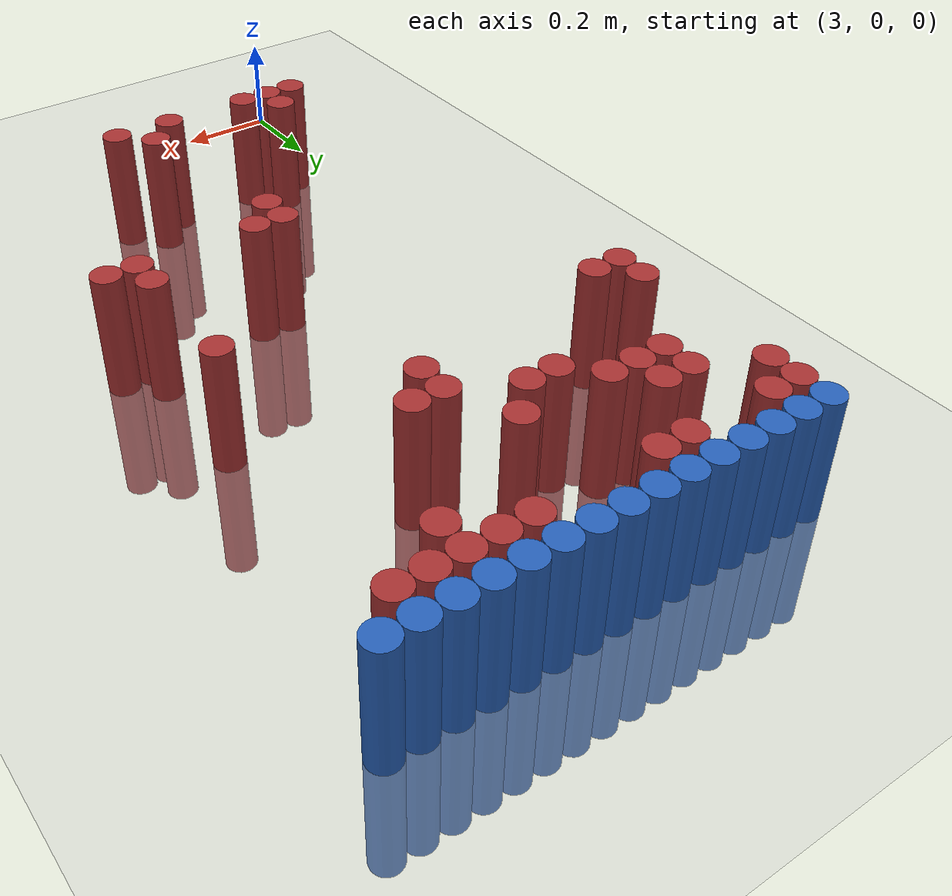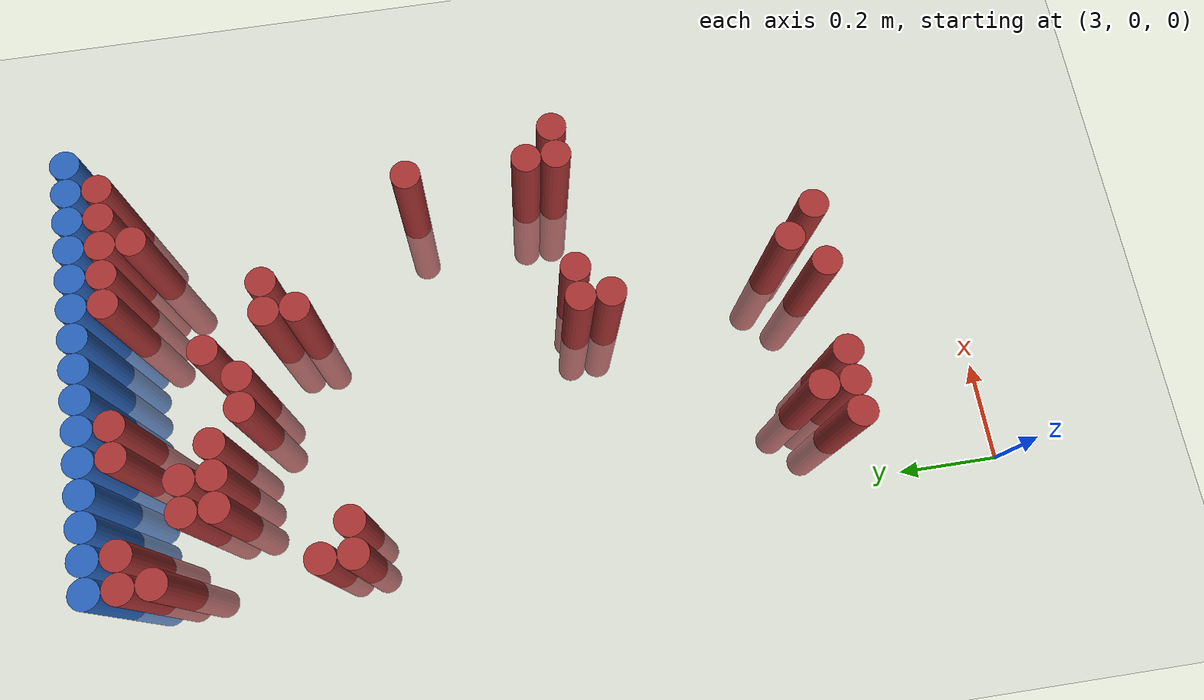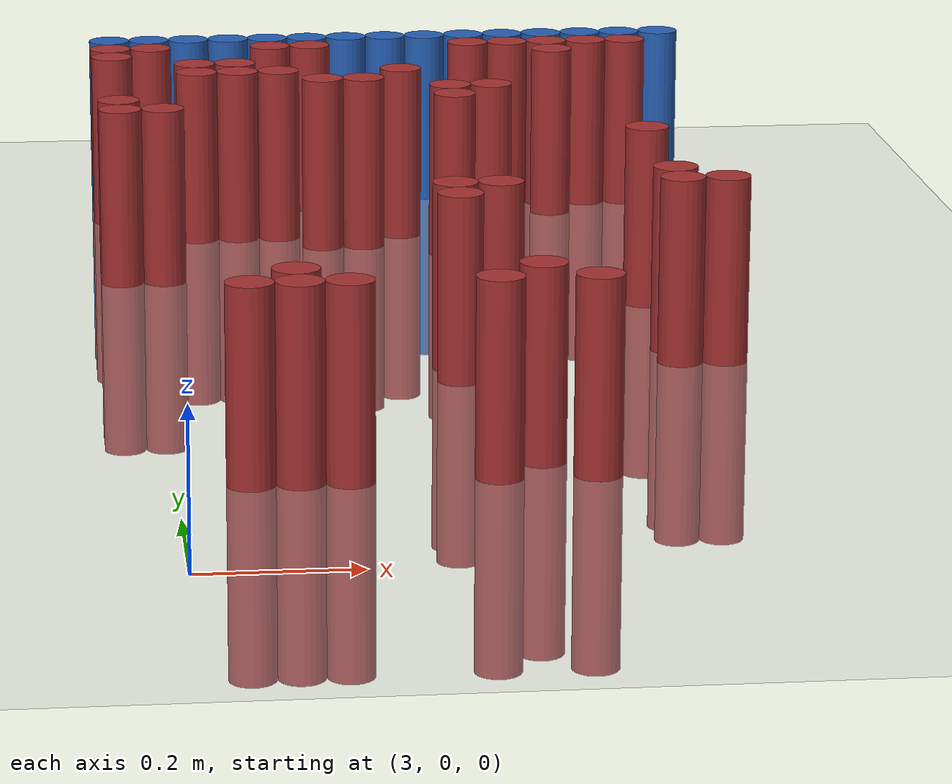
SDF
<sdf version="1.6">
 <world name="default">
  <model name="ground_plane">
   <static>1</static>
   <link name="link">
    <collision name="collision">
     <geometry><plane><normal>0 0 1</normal><size>100 100</size></plane></geometry>
     <surface><friction><ode><mu>100</mu><mu2>50</mu2></ode></friction></surface>
    </collision>
    <visual name="visual">
     <cast_shadows>0</cast_shadows>
     <geometry><plane><normal>0 0 1</normal><size>100 100</size></plane></geometry>
     <material>
      <script><uri>file://media/materials/scripts/gazebo.material</uri><name>Gazebo/Grey</name></script>
     </material>
    </visual>
   </link>
  </model>
  <model name="unit_cylinder_110">
   <static>1</static>
   <pose>2.970000 1.770000 0.000000 0.000000 0.000000 0.000000</pose>
   <link name="link">
    <inertial>
     <mass>1</mass>
     <inertia><ixx>0.145833</ixx><ixy>0</ixy><ixz>0</ixz><iyy>0.145833</iyy><iyz>0</iyz><izz>0.125</izz></inertia>
    </inertial>
    <collision name="collision">
     <geometry><cylinder><radius>0.030000</radius><length>0.5</length></cylinder></geometry>
    </collision>
    <visual name="visual">
     <geometry><cylinder><radius>0.030000</radius><length>0.5</length></cylinder></geometry>
     <material>
      <ambient>0.152000 0.379000 0.720000 1</ambient>
      <diffuse>0.152000 0.379000 0.720000 1</diffuse>
     </material>
     <material>
      <script><name>Gazebo/Grey</name><uri>file://media/materials/scripts/gazebo.material</uri></script>
     </material>
    </visual>
   </link>
  </model>
  <model name="unit_cylinder_111">
   <static>1</static>
   <pose>3.030000 1.770000 0.000000 0.000000 0.000000 0.000000</pose>
   <link name="link">
    <inertial>
     <mass>1</mass>
     <inertia><ixx>0.145833</ixx><ixy>0</ixy><ixz>0</ixz><iyy>0.145833</iyy><iyz>0</iyz><izz>0.125</izz></inertia>
    </inertial>
    <collision name="collision">
     <geometry><cylinder><radius>0.030000</radius><length>0.5</length></cylinder></geometry>
    </collision>
    <visual name="visual">
     <geometry><cylinder><radius>0.030000</radius><length>0.5</length></cylinder></geometry>
     <material>
      <ambient>0.152000 0.379000 0.720000 1</ambient>
      <diffuse>0.152000 0.379000 0.720000 1</diffuse>
     </material>
     <material>
      <script><name>Gazebo/Grey</name><uri>file://media/materials/scripts/gazebo.material</uri></script>
     </material>
    </visual>
   </link>
  </model>
  <model name="unit_cylinder_112">
   <static>1</static>
   <pose>3.090000 1.770000 0.000000 0.000000 0.000000 0.000000</pose>
   <link name="link">
    <inertial>
     <mass>1</mass>
     <inertia><ixx>0.145833</ixx><ixy>0</ixy><ixz>0</ixz><iyy>0.145833</iyy><iyz>0</iyz><izz>0.125</izz></inertia>
    </inertial>
    <collision name="collision">
     <geometry><cylinder><radius>0.030000</radius><length>0.5</length></cylinder></geometry>
    </collision>
    <visual name="visual">
     <geometry><cylinder><radius>0.030000</radius><length>0.5</length></cylinder></geometry>
     <material>
      <ambient>0.152000 0.379000 0.720000 1</ambient>
      <diffuse>0.152000 0.379000 0.720000 1</diffuse>
     </material>
     <material>
      <script><name>Gazebo/Grey</name><uri>file://media/materials/scripts/gazebo.material</uri></script>
     </material>
    </visual>
   </link>
  </model>
  <model name="unit_cylinder_113">
   <static>1</static>
   <pose>3.150000 1.770000 0.000000 0.000000 0.000000 0.000000</pose>
   <link name="link">
    <inertial>
     <mass>1</mass>
     <inertia><ixx>0.145833</ixx><ixy>0</ixy><ixz>0</ixz><iyy>0.145833</iyy><iyz>0</iyz><izz>0.125</izz></inertia>
    </inertial>
    <collision name="collision">
     <geometry><cylinder><radius>0.030000</radius><length>0.5</length></cylinder></geometry>
    </collision>
    <visual name="visual">
     <geometry><cylinder><radius>0.030000</radius><length>0.5</length></cylinder></geometry>
     <material>
      <ambient>0.152000 0.379000 0.720000 1</ambient>
      <diffuse>0.152000 0.379000 0.720000 1</diffuse>
     </material>
     <material>
      <script><name>Gazebo/Grey</name><uri>file://media/materials/scripts/gazebo.material</uri></script>
     </material>
    </visual>
   </link>
  </model>
  <model name="unit_cylinder_114">
   <static>1</static>
   <pose>3.210000 1.770000 0.000000 0.000000 0.000000 0.000000</pose>
   <link name="link">
    <inertial>
     <mass>1</mass>
     <inertia><ixx>0.145833</ixx><ixy>0</ixy><ixz>0</ixz><iyy>0.145833</iyy><iyz>0</iyz><izz>0.125</izz></inertia>
    </inertial>
    <collision name="collision">
     <geometry><cylinder><radius>0.030000</radius><length>0.5</length></cylinder></geometry>
    </collision>
    <visual name="visual">
     <geometry><cylinder><radius>0.030000</radius><length>0.5</length></cylinder></geometry>
     <material>
      <ambient>0.152000 0.379000 0.720000 1</ambient>
      <diffuse>0.152000 0.379000 0.720000 1</diffuse>
     </material>
     <material>
      <script><name>Gazebo/Grey</name><uri>file://media/materials/scripts/gazebo.material</uri></script>
     </material>
    </visual>
   </link>
  </model>
  <model name="unit_cylinder_115">
   <static>1</static>
   <pose>3.270000 1.770000 0.000000 0.000000 0.000000 0.000000</pose>
   <link name="link">
    <inertial>
     <mass>1</mass>
     <inertia><ixx>0.145833</ixx><ixy>0</ixy><ixz>0</ixz><iyy>0.145833</iyy><iyz>0</iyz><izz>0.125</izz></inertia>
    </inertial>
    <collision name="collision">
     <geometry><cylinder><radius>0.030000</radius><length>0.5</length></cylinder></geometry>
    </collision>
    <visual name="visual">
     <geometry><cylinder><radius>0.030000</radius><length>0.5</length></cylinder></geometry>
     <material>
      <ambient>0.152000 0.379000 0.720000 1</ambient>
      <diffuse>0.152000 0.379000 0.720000 1</diffuse>
     </material>
     <material>
      <script><name>Gazebo/Grey</name><uri>file://media/materials/scripts/gazebo.material</uri></script>
     </material>
    </visual>
   </link>
  </model>
  <model name="unit_cylinder_116">
   <static>1</static>
   <pose>3.330000 1.770000 0.000000 0.000000 0.000000 0.000000</pose>
   <link name="link">
    <inertial>
     <mass>1</mass>
     <inertia><ixx>0.145833</ixx><ixy>0</ixy><ixz>0</ixz><iyy>0.145833</iyy><iyz>0</iyz><izz>0.125</izz></inertia>
    </inertial>
    <collision name="collision">
     <geometry><cylinder><radius>0.030000</radius><length>0.5</length></cylinder></geometry>
    </collision>
    <visual name="visual">
     <geometry><cylinder><radius>0.030000</radius><length>0.5</length></cylinder></geometry>
     <material>
      <ambient>0.152000 0.379000 0.720000 1</ambient>
      <diffuse>0.152000 0.379000 0.720000 1</diffuse>
     </material>
     <material>
      <script><name>Gazebo/Grey</name><uri>file://media/materials/scripts/gazebo.material</uri></script>
     </material>
    </visual>
   </link>
  </model>
  <model name="unit_cylinder_117">
   <static>1</static>
   <pose>3.390000 1.770000 0.000000 0.000000 0.000000 0.000000</pose>
   <link name="link">
    <inertial>
     <mass>1</mass>
     <inertia><ixx>0.145833</ixx><ixy>0</ixy><ixz>0</ixz><iyy>0.145833</iyy><iyz>0</iyz><izz>0.125</izz></inertia>
    </inertial>
    <collision name="collision">
     <geometry><cylinder><radius>0.030000</radius><length>0.5</length></cylinder></geometry>
    </collision>
    <visual name="visual">
     <geometry><cylinder><radius>0.030000</radius><length>0.5</length></cylinder></geometry>
     <material>
      <ambient>0.152000 0.379000 0.720000 1</ambient>
      <diffuse>0.152000 0.379000 0.720000 1</diffuse>
     </material>
     <material>
      <script><name>Gazebo/Grey</name><uri>file://media/materials/scripts/gazebo.material</uri></script>
     </material>
    </visual>
   </link>
  </model>
  <model name="unit_cylinder_118">
   <static>1</static>
   <pose>3.450000 1.770000 0.000000 0.000000 0.000000 0.000000</pose>
   <link name="link">
    <inertial>
     <mass>1</mass>
     <inertia><ixx>0.145833</ixx><ixy>0</ixy><ixz>0</ixz><iyy>0.145833</iyy><iyz>0</iyz><izz>0.125</izz></inertia>
    </inertial>
    <collision name="collision">
     <geometry><cylinder><radius>0.030000</radius><length>0.5</length></cylinder></geometry>
    </collision>
    <visual name="visual">
     <geometry><cylinder><radius>0.030000</radius><length>0.5</length></cylinder></geometry>
     <material>
      <ambient>0.152000 0.379000 0.720000 1</ambient>
      <diffuse>0.152000 0.379000 0.720000 1</diffuse>
     </material>
     <material>
      <script><name>Gazebo/Grey</name><uri>file://media/materials/scripts/gazebo.material</uri></script>
     </material>
    </visual>
   </link>
  </model>
  <model name="unit_cylinder_119">
   <static>1</static>
   <pose>3.510000 1.770000 0.000000 0.000000 0.000000 0.000000</pose>
   <link name="link">
    <inertial>
     <mass>1</mass>
     <inertia><ixx>0.145833</ixx><ixy>0</ixy><ixz>0</ixz><iyy>0.145833</iyy><iyz>0</iyz><izz>0.125</izz></inertia>
    </inertial>
    <collision name="collision">
     <geometry><cylinder><radius>0.030000</radius><length>0.5</length></cylinder></geometry>
    </collision>
    <visual name="visual">
     <geometry><cylinder><radius>0.030000</radius><length>0.5</length></cylinder></geometry>
     <material>
      <ambient>0.152000 0.379000 0.720000 1</ambient>
      <diffuse>0.152000 0.379000 0.720000 1</diffuse>
     </material>
     <material>
      <script><name>Gazebo/Grey</name><uri>file://media/materials/scripts/gazebo.material</uri></script>
     </material>
    </visual>
   </link>
  </model>
  <model name="unit_cylinder_120">
   <static>1</static>
   <pose>3.570000 1.770000 0.000000 0.000000 0.000000 0.000000</pose>
   <link name="link">
    <inertial>
     <mass>1</mass>
     <inertia><ixx>0.145833</ixx><ixy>0</ixy><ixz>0</ixz><iyy>0.145833</iyy><iyz>0</iyz><izz>0.125</izz></inertia>
    </inertial>
    <collision name="collision">
     <geometry><cylinder><radius>0.030000</radius><length>0.5</length></cylinder></geometry>
    </collision>
    <visual name="visual">
     <geometry><cylinder><radius>0.030000</radius><length>0.5</length></cylinder></geometry>
     <material>
      <ambient>0.152000 0.379000 0.720000 1</ambient>
      <diffuse>0.152000 0.379000 0.720000 1</diffuse>
     </material>
     <material>
      <script><name>Gazebo/Grey</name><uri>file://media/materials/scripts/gazebo.material</uri></script>
     </material>
    </visual>
   </link>
  </model>
  <model name="unit_cylinder_121">
   <static>1</static>
   <pose>3.630000 1.770000 0.000000 0.000000 0.000000 0.000000</pose>
   <link name="link">
    <inertial>
     <mass>1</mass>
     <inertia><ixx>0.145833</ixx><ixy>0</ixy><ixz>0</ixz><iyy>0.145833</iyy><iyz>0</iyz><izz>0.125</izz></inertia>
    </inertial>
    <collision name="collision">
     <geometry><cylinder><radius>0.030000</radius><length>0.5</length></cylinder></geometry>
    </collision>
    <visual name="visual">
     <geometry><cylinder><radius>0.030000</radius><length>0.5</length></cylinder></geometry>
     <material>
      <ambient>0.152000 0.379000 0.720000 1</ambient>
      <diffuse>0.152000 0.379000 0.720000 1</diffuse>
     </material>
     <material>
      <script><name>Gazebo/Grey</name><uri>file://media/materials/scripts/gazebo.material</uri></script>
     </material>
    </visual>
   </link>
  </model>
  <model name="unit_cylinder_122">
   <static>1</static>
   <pose>3.690000 1.770000 0.000000 0.000000 0.000000 0.000000</pose>
   <link name="link">
    <inertial>
     <mass>1</mass>
     <inertia><ixx>0.145833</ixx><ixy>0</ixy><ixz>0</ixz><iyy>0.145833</iyy><iyz>0</iyz><izz>0.125</izz></inertia>
    </inertial>
    <collision name="collision">
     <geometry><cylinder><radius>0.030000</radius><length>0.5</length></cylinder></geometry>
    </collision>
    <visual name="visual">
     <geometry><cylinder><radius>0.030000</radius><length>0.5</length></cylinder></geometry>
     <material>
      <ambient>0.152000 0.379000 0.720000 1</ambient>
      <diffuse>0.152000 0.379000 0.720000 1</diffuse>
     </material>
     <material>
      <script><name>Gazebo/Grey</name><uri>file://media/materials/scripts/gazebo.material</uri></script>
     </material>
    </visual>
   </link>
  </model>
  <model name="unit_cylinder_123">
   <static>1</static>
   <pose>3.750000 1.770000 0.000000 0.000000 0.000000 0.000000</pose>
   <link name="link">
    <inertial>
     <mass>1</mass>
     <inertia><ixx>0.145833</ixx><ixy>0</ixy><ixz>0</ixz><iyy>0.145833</iyy><iyz>0</iyz><izz>0.125</izz></inertia>
    </inertial>
    <collision name="collision">
     <geometry><cylinder><radius>0.030000</radius><length>0.5</length></cylinder></geometry>
    </collision>
    <visual name="visual">
     <geometry><cylinder><radius>0.030000</radius><length>0.5</length></cylinder></geometry>
     <material>
      <ambient>0.152000 0.379000 0.720000 1</ambient>
      <diffuse>0.152000 0.379000 0.720000 1</diffuse>
     </material>
     <material>
      <script><name>Gazebo/Grey</name><uri>file://media/materials/scripts/gazebo.material</uri></script>
     </material>
    </visual>
   </link>
  </model>
  <model name="unit_cylinder_124">
   <static>1</static>
   <pose>3.810000 1.770000 0.000000 0.000000 0.000000 0.000000</pose>
   <link name="link">
    <inertial>
     <mass>1</mass>
     <inertia><ixx>0.145833</ixx><ixy>0</ixy><ixz>0</ixz><iyy>0.145833</iyy><iyz>0</iyz><izz>0.125</izz></inertia>
    </inertial>
    <collision name="collision">
     <geometry><cylinder><radius>0.030000</radius><length>0.5</length></cylinder></geometry>
    </collision>
    <visual name="visual">
     <geometry><cylinder><radius>0.030000</radius><length>0.5</length></cylinder></geometry>
     <material>
      <ambient>0.152000 0.379000 0.720000 1</ambient>
      <diffuse>0.152000 0.379000 0.720000 1</diffuse>
     </material>
     <material>
      <script><name>Gazebo/Grey</name><uri>file://media/materials/scripts/gazebo.material</uri></script>
     </material>
    </visual>
   </link>
  </model>
  <model name="unit_cylinder_134">
   <static>1</static>
   <pose>2.970000 1.710000 0.000000 0.000000 0.000000 0.000000</pose>
   <link name="link">
    <inertial>
     <mass>1</mass>
     <inertia><ixx>0.145833</ixx><ixy>0</ixy><ixz>0</ixz><iyy>0.145833</iyy><iyz>0</iyz><izz>0.125</izz></inertia>
    </inertial>
    <collision name="collision">
     <geometry><cylinder><radius>0.030000</radius><length>0.5</length></cylinder></geometry>
    </collision>
    <visual name="visual">
     <geometry><cylinder><radius>0.030000</radius><length>0.5</length></cylinder></geometry>
     <material>
      <ambient>0.648000 0.192000 0.192000 1</ambient>
      <diffuse>0.648000 0.192000 0.192000 1</diffuse>
     </material>
     <material>
      <script><name>Gazebo/Grey</name><uri>file://media/materials/scripts/gazebo.material</uri></script>
     </material>
    </visual>
   </link>
  </model>
  <model name="unit_cylinder_135">
   <static>1</static>
   <pose>3.030000 1.710000 0.000000 0.000000 0.000000 0.000000</pose>
   <link name="link">
    <inertial>
     <mass>1</mass>
     <inertia><ixx>0.145833</ixx><ixy>0</ixy><ixz>0</ixz><iyy>0.145833</iyy><iyz>0</iyz><izz>0.125</izz></inertia>
    </inertial>
    <collision name="collision">
     <geometry><cylinder><radius>0.030000</radius><length>0.5</length></cylinder></geometry>
    </collision>
    <visual name="visual">
     <geometry><cylinder><radius>0.030000</radius><length>0.5</length></cylinder></geometry>
     <material>
      <ambient>0.648000 0.192000 0.192000 1</ambient>
      <diffuse>0.648000 0.192000 0.192000 1</diffuse>
     </material>
     <material>
      <script><name>Gazebo/Grey</name><uri>file://media/materials/scripts/gazebo.material</uri></script>
     </material>
    </visual>
   </link>
  </model>
  <model name="unit_cylinder_136">
   <static>1</static>
   <pose>3.210000 1.710000 0.000000 0.000000 0.000000 0.000000</pose>
   <link name="link">
    <inertial>
     <mass>1</mass>
     <inertia><ixx>0.145833</ixx><ixy>0</ixy><ixz>0</ixz><iyy>0.145833</iyy><iyz>0</iyz><izz>0.125</izz></inertia>
    </inertial>
    <collision name="collision">
     <geometry><cylinder><radius>0.030000</radius><length>0.5</length></cylinder></geometry>
    </collision>
    <visual name="visual">
     <geometry><cylinder><radius>0.030000</radius><length>0.5</length></cylinder></geometry>
     <material>
      <ambient>0.648000 0.192000 0.192000 1</ambient>
      <diffuse>0.648000 0.192000 0.192000 1</diffuse>
     </material>
     <material>
      <script><name>Gazebo/Grey</name><uri>file://media/materials/scripts/gazebo.material</uri></script>
     </material>
    </visual>
   </link>
  </model>
  <model name="unit_cylinder_137">
   <static>1</static>
   <pose>3.270000 1.710000 0.000000 0.000000 0.000000 0.000000</pose>
   <link name="link">
    <inertial>
     <mass>1</mass>
     <inertia><ixx>0.145833</ixx><ixy>0</ixy><ixz>0</ixz><iyy>0.145833</iyy><iyz>0</iyz><izz>0.125</izz></inertia>
    </inertial>
    <collision name="collision">
     <geometry><cylinder><radius>0.030000</radius><length>0.5</length></cylinder></geometry>
    </collision>
    <visual name="visual">
     <geometry><cylinder><radius>0.030000</radius><length>0.5</length></cylinder></geometry>
     <material>
      <ambient>0.648000 0.192000 0.192000 1</ambient>
      <diffuse>0.648000 0.192000 0.192000 1</diffuse>
     </material>
     <material>
      <script><name>Gazebo/Grey</name><uri>file://media/materials/scripts/gazebo.material</uri></script>
     </material>
    </visual>
   </link>
  </model>
  <model name="unit_cylinder_138">
   <static>1</static>
   <pose>3.510000 1.710000 0.000000 0.000000 0.000000 0.000000</pose>
   <link name="link">
    <inertial>
     <mass>1</mass>
     <inertia><ixx>0.145833</ixx><ixy>0</ixy><ixz>0</ixz><iyy>0.145833</iyy><iyz>0</iyz><izz>0.125</izz></inertia>
    </inertial>
    <collision name="collision">
     <geometry><cylinder><radius>0.030000</radius><length>0.5</length></cylinder></geometry>
    </collision>
    <visual name="visual">
     <geometry><cylinder><radius>0.030000</radius><length>0.5</length></cylinder></geometry>
     <material>
      <ambient>0.648000 0.192000 0.192000 1</ambient>
      <diffuse>0.648000 0.192000 0.192000 1</diffuse>
     </material>
     <material>
      <script><name>Gazebo/Grey</name><uri>file://media/materials/scripts/gazebo.material</uri></script>
     </material>
    </visual>
   </link>
  </model>
  <model name="unit_cylinder_139">
   <static>1</static>
   <pose>3.570000 1.710000 0.000000 0.000000 0.000000 0.000000</pose>
   <link name="link">
    <inertial>
     <mass>1</mass>
     <inertia><ixx>0.145833</ixx><ixy>0</ixy><ixz>0</ixz><iyy>0.145833</iyy><iyz>0</iyz><izz>0.125</izz></inertia>
    </inertial>
    <collision name="collision">
     <geometry><cylinder><radius>0.030000</radius><length>0.5</length></cylinder></geometry>
    </collision>
    <visual name="visual">
     <geometry><cylinder><radius>0.030000</radius><length>0.5</length></cylinder></geometry>
     <material>
      <ambient>0.648000 0.192000 0.192000 1</ambient>
      <diffuse>0.648000 0.192000 0.192000 1</diffuse>
     </material>
     <material>
      <script><name>Gazebo/Grey</name><uri>file://media/materials/scripts/gazebo.material</uri></script>
     </material>
    </visual>
   </link>
  </model>
  <model name="unit_cylinder_140">
   <static>1</static>
   <pose>3.630000 1.710000 0.000000 0.000000 0.000000 0.000000</pose>
   <link name="link">
    <inertial>
     <mass>1</mass>
     <inertia><ixx>0.145833</ixx><ixy>0</ixy><ixz>0</ixz><iyy>0.145833</iyy><iyz>0</iyz><izz>0.125</izz></inertia>
    </inertial>
    <collision name="collision">
     <geometry><cylinder><radius>0.030000</radius><length>0.5</length></cylinder></geometry>
    </collision>
    <visual name="visual">
     <geometry><cylinder><radius>0.030000</radius><length>0.5</length></cylinder></geometry>
     <material>
      <ambient>0.648000 0.192000 0.192000 1</ambient>
      <diffuse>0.648000 0.192000 0.192000 1</diffuse>
     </material>
     <material>
      <script><name>Gazebo/Grey</name><uri>file://media/materials/scripts/gazebo.material</uri></script>
     </material>
    </visual>
   </link>
  </model>
  <model name="unit_cylinder_141">
   <static>1</static>
   <pose>3.690000 1.710000 0.000000 0.000000 0.000000 0.000000</pose>
   <link name="link">
    <inertial>
     <mass>1</mass>
     <inertia><ixx>0.145833</ixx><ixy>0</ixy><ixz>0</ixz><iyy>0.145833</iyy><iyz>0</iyz><izz>0.125</izz></inertia>
    </inertial>
    <collision name="collision">
     <geometry><cylinder><radius>0.030000</radius><length>0.5</length></cylinder></geometry>
    </collision>
    <visual name="visual">
     <geometry><cylinder><radius>0.030000</radius><length>0.5</length></cylinder></geometry>
     <material>
      <ambient>0.648000 0.192000 0.192000 1</ambient>
      <diffuse>0.648000 0.192000 0.192000 1</diffuse>
     </material>
     <material>
      <script><name>Gazebo/Grey</name><uri>file://media/materials/scripts/gazebo.material</uri></script>
     </material>
    </visual>
   </link>
  </model>
  <model name="unit_cylinder_142">
   <static>1</static>
   <pose>3.750000 1.710000 0.000000 0.000000 0.000000 0.000000</pose>
   <link name="link">
    <inertial>
     <mass>1</mass>
     <inertia><ixx>0.145833</ixx><ixy>0</ixy><ixz>0</ixz><iyy>0.145833</iyy><iyz>0</iyz><izz>0.125</izz></inertia>
    </inertial>
    <collision name="collision">
     <geometry><cylinder><radius>0.030000</radius><length>0.5</length></cylinder></geometry>
    </collision>
    <visual name="visual">
     <geometry><cylinder><radius>0.030000</radius><length>0.5</length></cylinder></geometry>
     <material>
      <ambient>0.648000 0.192000 0.192000 1</ambient>
      <diffuse>0.648000 0.192000 0.192000 1</diffuse>
     </material>
     <material>
      <script><name>Gazebo/Grey</name><uri>file://media/materials/scripts/gazebo.material</uri></script>
     </material>
    </visual>
   </link>
  </model>
  <model name="unit_cylinder_149">
   <static>1</static>
   <pose>2.970000 1.650000 0.000000 0.000000 0.000000 0.000000</pose>
   <link name="link">
    <inertial>
     <mass>1</mass>
     <inertia><ixx>0.145833</ixx><ixy>0</ixy><ixz>0</ixz><iyy>0.145833</iyy><iyz>0</iyz><izz>0.125</izz></inertia>
    </inertial>
    <collision name="collision">
     <geometry><cylinder><radius>0.030000</radius><length>0.5</length></cylinder></geometry>
    </collision>
    <visual name="visual">
     <geometry><cylinder><radius>0.030000</radius><length>0.5</length></cylinder></geometry>
     <material>
      <ambient>0.648000 0.192000 0.192000 1</ambient>
      <diffuse>0.648000 0.192000 0.192000 1</diffuse>
     </material>
     <material>
      <script><name>Gazebo/Grey</name><uri>file://media/materials/scripts/gazebo.material</uri></script>
     </material>
    </visual>
   </link>
  </model>
  <model name="unit_cylinder_150">
   <static>1</static>
   <pose>3.630000 1.650000 0.000000 0.000000 0.000000 0.000000</pose>
   <link name="link">
    <inertial>
     <mass>1</mass>
     <inertia><ixx>0.145833</ixx><ixy>0</ixy><ixz>0</ixz><iyy>0.145833</iyy><iyz>0</iyz><izz>0.125</izz></inertia>
    </inertial>
    <collision name="collision">
     <geometry><cylinder><radius>0.030000</radius><length>0.5</length></cylinder></geometry>
    </collision>
    <visual name="visual">
     <geometry><cylinder><radius>0.030000</radius><length>0.5</length></cylinder></geometry>
     <material>
      <ambient>0.648000 0.192000 0.192000 1</ambient>
      <diffuse>0.648000 0.192000 0.192000 1</diffuse>
     </material>
     <material>
      <script><name>Gazebo/Grey</name><uri>file://media/materials/scripts/gazebo.material</uri></script>
     </material>
    </visual>
   </link>
  </model>
  <model name="unit_cylinder_156">
   <static>1</static>
   <pose>3.090000 1.590000 0.000000 0.000000 0.000000 0.000000</pose>
   <link name="link">
    <inertial>
     <mass>1</mass>
     <inertia><ixx>0.145833</ixx><ixy>0</ixy><ixz>0</ixz><iyy>0.145833</iyy><iyz>0</iyz><izz>0.125</izz></inertia>
    </inertial>
    <collision name="collision">
     <geometry><cylinder><radius>0.030000</radius><length>0.5</length></cylinder></geometry>
    </collision>
    <visual name="visual">
     <geometry><cylinder><radius>0.030000</radius><length>0.5</length></cylinder></geometry>
     <material>
      <ambient>0.648000 0.192000 0.192000 1</ambient>
      <diffuse>0.648000 0.192000 0.192000 1</diffuse>
     </material>
     <material>
      <script><name>Gazebo/Grey</name><uri>file://media/materials/scripts/gazebo.material</uri></script>
     </material>
    </visual>
   </link>
  </model>
  <model name="unit_cylinder_157">
   <static>1</static>
   <pose>3.150000 1.590000 0.000000 0.000000 0.000000 0.000000</pose>
   <link name="link">
    <inertial>
     <mass>1</mass>
     <inertia><ixx>0.145833</ixx><ixy>0</ixy><ixz>0</ixz><iyy>0.145833</iyy><iyz>0</iyz><izz>0.125</izz></inertia>
    </inertial>
    <collision name="collision">
     <geometry><cylinder><radius>0.030000</radius><length>0.5</length></cylinder></geometry>
    </collision>
    <visual name="visual">
     <geometry><cylinder><radius>0.030000</radius><length>0.5</length></cylinder></geometry>
     <material>
      <ambient>0.648000 0.192000 0.192000 1</ambient>
      <diffuse>0.648000 0.192000 0.192000 1</diffuse>
     </material>
     <material>
      <script><name>Gazebo/Grey</name><uri>file://media/materials/scripts/gazebo.material</uri></script>
     </material>
    </visual>
   </link>
  </model>
  <model name="unit_cylinder_159">
   <static>1</static>
   <pose>3.090000 1.530000 0.000000 0.000000 0.000000 0.000000</pose>
   <link name="link">
    <inertial>
     <mass>1</mass>
     <inertia><ixx>0.145833</ixx><ixy>0</ixy><ixz>0</ixz><iyy>0.145833</iyy><iyz>0</iyz><izz>0.125</izz></inertia>
    </inertial>
    <collision name="collision">
     <geometry><cylinder><radius>0.030000</radius><length>0.5</length></cylinder></geometry>
    </collision>
    <visual name="visual">
     <geometry><cylinder><radius>0.030000</radius><length>0.5</length></cylinder></geometry>
     <material>
      <ambient>0.648000 0.192000 0.192000 1</ambient>
      <diffuse>0.648000 0.192000 0.192000 1</diffuse>
     </material>
     <material>
      <script><name>Gazebo/Grey</name><uri>file://media/materials/scripts/gazebo.material</uri></script>
     </material>
    </visual>
   </link>
  </model>
  <model name="unit_cylinder_160">
   <static>1</static>
   <pose>3.150000 1.530000 0.000000 0.000000 0.000000 0.000000</pose>
   <link name="link">
    <inertial>
     <mass>1</mass>
     <inertia><ixx>0.145833</ixx><ixy>0</ixy><ixz>0</ixz><iyy>0.145833</iyy><iyz>0</iyz><izz>0.125</izz></inertia>
    </inertial>
    <collision name="collision">
     <geometry><cylinder><radius>0.030000</radius><length>0.5</length></cylinder></geometry>
    </collision>
    <visual name="visual">
     <geometry><cylinder><radius>0.030000</radius><length>0.5</length></cylinder></geometry>
     <material>
      <ambient>0.648000 0.192000 0.192000 1</ambient>
      <diffuse>0.648000 0.192000 0.192000 1</diffuse>
     </material>
     <material>
      <script><name>Gazebo/Grey</name><uri>file://media/materials/scripts/gazebo.material</uri></script>
     </material>
    </visual>
   </link>
  </model>
  <model name="unit_cylinder_161">
   <static>1</static>
   <pose>3.210000 1.530000 0.000000 0.000000 0.000000 0.000000</pose>
   <link name="link">
    <inertial>
     <mass>1</mass>
     <inertia><ixx>0.145833</ixx><ixy>0</ixy><ixz>0</ixz><iyy>0.145833</iyy><iyz>0</iyz><izz>0.125</izz></inertia>
    </inertial>
    <collision name="collision">
     <geometry><cylinder><radius>0.030000</radius><length>0.5</length></cylinder></geometry>
    </collision>
    <visual name="visual">
     <geometry><cylinder><radius>0.030000</radius><length>0.5</length></cylinder></geometry>
     <material>
      <ambient>0.648000 0.192000 0.192000 1</ambient>
      <diffuse>0.648000 0.192000 0.192000 1</diffuse>
     </material>
     <material>
      <script><name>Gazebo/Grey</name><uri>file://media/materials/scripts/gazebo.material</uri></script>
     </material>
    </visual>
   </link>
  </model>
  <model name="unit_cylinder_162">
   <static>1</static>
   <pose>3.390000 1.530000 0.000000 0.000000 0.000000 0.000000</pose>
   <link name="link">
    <inertial>
     <mass>1</mass>
     <inertia><ixx>0.145833</ixx><ixy>0</ixy><ixz>0</ixz><iyy>0.145833</iyy><iyz>0</iyz><izz>0.125</izz></inertia>
    </inertial>
    <collision name="collision">
     <geometry><cylinder><radius>0.030000</radius><length>0.5</length></cylinder></geometry>
    </collision>
    <visual name="visual">
     <geometry><cylinder><radius>0.030000</radius><length>0.5</length></cylinder></geometry>
     <material>
      <ambient>0.648000 0.192000 0.192000 1</ambient>
      <diffuse>0.648000 0.192000 0.192000 1</diffuse>
     </material>
     <material>
      <script><name>Gazebo/Grey</name><uri>file://media/materials/scripts/gazebo.material</uri></script>
     </material>
    </visual>
   </link>
  </model>
  <model name="unit_cylinder_164">
   <static>1</static>
   <pose>3.270000 1.470000 0.000000 0.000000 0.000000 0.000000</pose>
   <link name="link">
    <inertial>
     <mass>1</mass>
     <inertia><ixx>0.145833</ixx><ixy>0</ixy><ixz>0</ixz><iyy>0.145833</iyy><iyz>0</iyz><izz>0.125</izz></inertia>
    </inertial>
    <collision name="collision">
     <geometry><cylinder><radius>0.030000</radius><length>0.5</length></cylinder></geometry>
    </collision>
    <visual name="visual">
     <geometry><cylinder><radius>0.030000</radius><length>0.5</length></cylinder></geometry>
     <material>
      <ambient>0.648000 0.192000 0.192000 1</ambient>
      <diffuse>0.648000 0.192000 0.192000 1</diffuse>
     </material>
     <material>
      <script><name>Gazebo/Grey</name><uri>file://media/materials/scripts/gazebo.material</uri></script>
     </material>
    </visual>
   </link>
  </model>
  <model name="unit_cylinder_165">
   <static>1</static>
   <pose>3.330000 1.470000 0.000000 0.000000 0.000000 0.000000</pose>
   <link name="link">
    <inertial>
     <mass>1</mass>
     <inertia><ixx>0.145833</ixx><ixy>0</ixy><ixz>0</ixz><iyy>0.145833</iyy><iyz>0</iyz><izz>0.125</izz></inertia>
    </inertial>
    <collision name="collision">
     <geometry><cylinder><radius>0.030000</radius><length>0.5</length></cylinder></geometry>
    </collision>
    <visual name="visual">
     <geometry><cylinder><radius>0.030000</radius><length>0.5</length></cylinder></geometry>
     <material>
      <ambient>0.648000 0.192000 0.192000 1</ambient>
      <diffuse>0.648000 0.192000 0.192000 1</diffuse>
     </material>
     <material>
      <script><name>Gazebo/Grey</name><uri>file://media/materials/scripts/gazebo.material</uri></script>
     </material>
    </visual>
   </link>
  </model>
  <model name="unit_cylinder_166">
   <static>1</static>
   <pose>3.450000 1.410000 0.000000 0.000000 0.000000 0.000000</pose>
   <link name="link">
    <inertial>
     <mass>1</mass>
     <inertia><ixx>0.145833</ixx><ixy>0</ixy><ixz>0</ixz><iyy>0.145833</iyy><iyz>0</iyz><izz>0.125</izz></inertia>
    </inertial>
    <collision name="collision">
     <geometry><cylinder><radius>0.030000</radius><length>0.5</length></cylinder></geometry>
    </collision>
    <visual name="visual">
     <geometry><cylinder><radius>0.030000</radius><length>0.5</length></cylinder></geometry>
     <material>
      <ambient>0.648000 0.192000 0.192000 1</ambient>
      <diffuse>0.648000 0.192000 0.192000 1</diffuse>
     </material>
     <material>
      <script><name>Gazebo/Grey</name><uri>file://media/materials/scripts/gazebo.material</uri></script>
     </material>
    </visual>
   </link>
  </model>
  <model name="unit_cylinder_167">
   <static>1</static>
   <pose>3.510000 1.410000 0.000000 0.000000 0.000000 0.000000</pose>
   <link name="link">
    <inertial>
     <mass>1</mass>
     <inertia><ixx>0.145833</ixx><ixy>0</ixy><ixz>0</ixz><iyy>0.145833</iyy><iyz>0</iyz><izz>0.125</izz></inertia>
    </inertial>
    <collision name="collision">
     <geometry><cylinder><radius>0.030000</radius><length>0.5</length></cylinder></geometry>
    </collision>
    <visual name="visual">
     <geometry><cylinder><radius>0.030000</radius><length>0.5</length></cylinder></geometry>
     <material>
      <ambient>0.648000 0.192000 0.192000 1</ambient>
      <diffuse>0.648000 0.192000 0.192000 1</diffuse>
     </material>
     <material>
      <script><name>Gazebo/Grey</name><uri>file://media/materials/scripts/gazebo.material</uri></script>
     </material>
    </visual>
   </link>
  </model>
  <model name="unit_cylinder_169">
   <static>1</static>
   <pose>2.970000 1.350000 0.000000 0.000000 0.000000 0.000000</pose>
   <link name="link">
    <inertial>
     <mass>1</mass>
     <inertia><ixx>0.145833</ixx><ixy>0</ixy><ixz>0</ixz><iyy>0.145833</iyy><iyz>0</iyz><izz>0.125</izz></inertia>
    </inertial>
    <collision name="collision">
     <geometry><cylinder><radius>0.030000</radius><length>0.5</length></cylinder></geometry>
    </collision>
    <visual name="visual">
     <geometry><cylinder><radius>0.030000</radius><length>0.5</length></cylinder></geometry>
     <material>
      <ambient>0.648000 0.192000 0.192000 1</ambient>
      <diffuse>0.648000 0.192000 0.192000 1</diffuse>
     </material>
     <material>
      <script><name>Gazebo/Grey</name><uri>file://media/materials/scripts/gazebo.material</uri></script>
     </material>
    </visual>
   </link>
  </model>
  <model name="unit_cylinder_170">
   <static>1</static>
   <pose>3.450000 1.350000 0.000000 0.000000 0.000000 0.000000</pose>
   <link name="link">
    <inertial>
     <mass>1</mass>
     <inertia><ixx>0.145833</ixx><ixy>0</ixy><ixz>0</ixz><iyy>0.145833</iyy><iyz>0</iyz><izz>0.125</izz></inertia>
    </inertial>
    <collision name="collision">
     <geometry><cylinder><radius>0.030000</radius><length>0.5</length></cylinder></geometry>
    </collision>
    <visual name="visual">
     <geometry><cylinder><radius>0.030000</radius><length>0.5</length></cylinder></geometry>
     <material>
      <ambient>0.648000 0.192000 0.192000 1</ambient>
      <diffuse>0.648000 0.192000 0.192000 1</diffuse>
     </material>
     <material>
      <script><name>Gazebo/Grey</name><uri>file://media/materials/scripts/gazebo.material</uri></script>
     </material>
    </visual>
   </link>
  </model>
  <model name="unit_cylinder_172">
   <static>1</static>
   <pose>2.970000 1.290000 0.000000 0.000000 0.000000 0.000000</pose>
   <link name="link">
    <inertial>
     <mass>1</mass>
     <inertia><ixx>0.145833</ixx><ixy>0</ixy><ixz>0</ixz><iyy>0.145833</iyy><iyz>0</iyz><izz>0.125</izz></inertia>
    </inertial>
    <collision name="collision">
     <geometry><cylinder><radius>0.030000</radius><length>0.5</length></cylinder></geometry>
    </collision>
    <visual name="visual">
     <geometry><cylinder><radius>0.030000</radius><length>0.5</length></cylinder></geometry>
     <material>
      <ambient>0.648000 0.192000 0.192000 1</ambient>
      <diffuse>0.648000 0.192000 0.192000 1</diffuse>
     </material>
     <material>
      <script><name>Gazebo/Grey</name><uri>file://media/materials/scripts/gazebo.material</uri></script>
     </material>
    </visual>
   </link>
  </model>
  <model name="unit_cylinder_173">
   <static>1</static>
   <pose>3.030000 1.290000 0.000000 0.000000 0.000000 0.000000</pose>
   <link name="link">
    <inertial>
     <mass>1</mass>
     <inertia><ixx>0.145833</ixx><ixy>0</ixy><ixz>0</ixz><iyy>0.145833</iyy><iyz>0</iyz><izz>0.125</izz></inertia>
    </inertial>
    <collision name="collision">
     <geometry><cylinder><radius>0.030000</radius><length>0.5</length></cylinder></geometry>
    </collision>
    <visual name="visual">
     <geometry><cylinder><radius>0.030000</radius><length>0.5</length></cylinder></geometry>
     <material>
      <ambient>0.648000 0.192000 0.192000 1</ambient>
      <diffuse>0.648000 0.192000 0.192000 1</diffuse>
     </material>
     <material>
      <script><name>Gazebo/Grey</name><uri>file://media/materials/scripts/gazebo.material</uri></script>
     </material>
    </visual>
   </link>
  </model>
  <model name="unit_cylinder_174">
   <static>1</static>
   <pose>3.690000 1.110000 0.000000 0.000000 0.000000 0.000000</pose>
   <link name="link">
    <inertial>
     <mass>1</mass>
     <inertia><ixx>0.145833</ixx><ixy>0</ixy><ixz>0</ixz><iyy>0.145833</iyy><iyz>0</iyz><izz>0.125</izz></inertia>
    </inertial>
    <collision name="collision">
     <geometry><cylinder><radius>0.030000</radius><length>0.5</length></cylinder></geometry>
    </collision>
    <visual name="visual">
     <geometry><cylinder><radius>0.030000</radius><length>0.5</length></cylinder></geometry>
     <material>
      <ambient>0.648000 0.192000 0.192000 1</ambient>
      <diffuse>0.648000 0.192000 0.192000 1</diffuse>
     </material>
     <material>
      <script><name>Gazebo/Grey</name><uri>file://media/materials/scripts/gazebo.material</uri></script>
     </material>
    </visual>
   </link>
  </model>
  <model name="unit_cylinder_177">
   <static>1</static>
   <pose>3.690000 0.870000 0.000000 0.000000 0.000000 0.000000</pose>
   <link name="link">
    <inertial>
     <mass>1</mass>
     <inertia><ixx>0.145833</ixx><ixy>0</ixy><ixz>0</ixz><iyy>0.145833</iyy><iyz>0</iyz><izz>0.125</izz></inertia>
    </inertial>
    <collision name="collision">
     <geometry><cylinder><radius>0.030000</radius><length>0.5</length></cylinder></geometry>
    </collision>
    <visual name="visual">
     <geometry><cylinder><radius>0.030000</radius><length>0.5</length></cylinder></geometry>
     <material>
      <ambient>0.648000 0.192000 0.192000 1</ambient>
      <diffuse>0.648000 0.192000 0.192000 1</diffuse>
     </material>
     <material>
      <script><name>Gazebo/Grey</name><uri>file://media/materials/scripts/gazebo.material</uri></script>
     </material>
    </visual>
   </link>
  </model>
  <model name="unit_cylinder_179">
   <static>1</static>
   <pose>3.390000 0.810000 0.000000 0.000000 0.000000 0.000000</pose>
   <link name="link">
    <inertial>
     <mass>1</mass>
     <inertia><ixx>0.145833</ixx><ixy>0</ixy><ixz>0</ixz><iyy>0.145833</iyy><iyz>0</iyz><izz>0.125</izz></inertia>
    </inertial>
    <collision name="collision">
     <geometry><cylinder><radius>0.030000</radius><length>0.5</length></cylinder></geometry>
    </collision>
    <visual name="visual">
     <geometry><cylinder><radius>0.030000</radius><length>0.5</length></cylinder></geometry>
     <material>
      <ambient>0.648000 0.192000 0.192000 1</ambient>
      <diffuse>0.648000 0.192000 0.192000 1</diffuse>
     </material>
     <material>
      <script><name>Gazebo/Grey</name><uri>file://media/materials/scripts/gazebo.material</uri></script>
     </material>
    </visual>
   </link>
  </model>
  <model name="unit_cylinder_180">
   <static>1</static>
   <pose>3.450000 0.810000 0.000000 0.000000 0.000000 0.000000</pose>
   <link name="link">
    <inertial>
     <mass>1</mass>
     <inertia><ixx>0.145833</ixx><ixy>0</ixy><ixz>0</ixz><iyy>0.145833</iyy><iyz>0</iyz><izz>0.125</izz></inertia>
    </inertial>
    <collision name="collision">
     <geometry><cylinder><radius>0.030000</radius><length>0.5</length></cylinder></geometry>
    </collision>
    <visual name="visual">
     <geometry><cylinder><radius>0.030000</radius><length>0.5</length></cylinder></geometry>
     <material>
      <ambient>0.648000 0.192000 0.192000 1</ambient>
      <diffuse>0.648000 0.192000 0.192000 1</diffuse>
     </material>
     <material>
      <script><name>Gazebo/Grey</name><uri>file://media/materials/scripts/gazebo.material</uri></script>
     </material>
    </visual>
   </link>
  </model>
  <model name="unit_cylinder_181">
   <static>1</static>
   <pose>3.690000 0.810000 0.000000 0.000000 0.000000 0.000000</pose>
   <link name="link">
    <inertial>
     <mass>1</mass>
     <inertia><ixx>0.145833</ixx><ixy>0</ixy><ixz>0</ixz><iyy>0.145833</iyy><iyz>0</iyz><izz>0.125</izz></inertia>
    </inertial>
    <collision name="collision">
     <geometry><cylinder><radius>0.030000</radius><length>0.5</length></cylinder></geometry>
    </collision>
    <visual name="visual">
     <geometry><cylinder><radius>0.030000</radius><length>0.5</length></cylinder></geometry>
     <material>
      <ambient>0.648000 0.192000 0.192000 1</ambient>
      <diffuse>0.648000 0.192000 0.192000 1</diffuse>
     </material>
     <material>
      <script><name>Gazebo/Grey</name><uri>file://media/materials/scripts/gazebo.material</uri></script>
     </material>
    </visual>
   </link>
  </model>
  <model name="unit_cylinder_182">
   <static>1</static>
   <pose>3.750000 0.810000 0.000000 0.000000 0.000000 0.000000</pose>
   <link name="link">
    <inertial>
     <mass>1</mass>
     <inertia><ixx>0.145833</ixx><ixy>0</ixy><ixz>0</ixz><iyy>0.145833</iyy><iyz>0</iyz><izz>0.125</izz></inertia>
    </inertial>
    <collision name="collision">
     <geometry><cylinder><radius>0.030000</radius><length>0.5</length></cylinder></geometry>
    </collision>
    <visual name="visual">
     <geometry><cylinder><radius>0.030000</radius><length>0.5</length></cylinder></geometry>
     <material>
      <ambient>0.648000 0.192000 0.192000 1</ambient>
      <diffuse>0.648000 0.192000 0.192000 1</diffuse>
     </material>
     <material>
      <script><name>Gazebo/Grey</name><uri>file://media/materials/scripts/gazebo.material</uri></script>
     </material>
    </visual>
   </link>
  </model>
  <model name="unit_cylinder_185">
   <static>1</static>
   <pose>3.390000 0.750000 0.000000 0.000000 0.000000 0.000000</pose>
   <link name="link">
    <inertial>
     <mass>1</mass>
     <inertia><ixx>0.145833</ixx><ixy>0</ixy><ixz>0</ixz><iyy>0.145833</iyy><iyz>0</iyz><izz>0.125</izz></inertia>
    </inertial>
    <collision name="collision">
     <geometry><cylinder><radius>0.030000</radius><length>0.5</length></cylinder></geometry>
    </collision>
    <visual name="visual">
     <geometry><cylinder><radius>0.030000</radius><length>0.5</length></cylinder></geometry>
     <material>
      <ambient>0.648000 0.192000 0.192000 1</ambient>
      <diffuse>0.648000 0.192000 0.192000 1</diffuse>
     </material>
     <material>
      <script><name>Gazebo/Grey</name><uri>file://media/materials/scripts/gazebo.material</uri></script>
     </material>
    </visual>
   </link>
  </model>
  <model name="unit_cylinder_203">
   <static>1</static>
   <pose>3.150000 0.390000 0.000000 0.000000 0.000000 0.000000</pose>
   <link name="link">
    <inertial>
     <mass>1</mass>
     <inertia><ixx>0.145833</ixx><ixy>0</ixy><ixz>0</ixz><iyy>0.145833</iyy><iyz>0</iyz><izz>0.125</izz></inertia>
    </inertial>
    <collision name="collision">
     <geometry><cylinder><radius>0.030000</radius><length>0.5</length></cylinder></geometry>
    </collision>
    <visual name="visual">
     <geometry><cylinder><radius>0.030000</radius><length>0.5</length></cylinder></geometry>
     <material>
      <ambient>0.648000 0.192000 0.192000 1</ambient>
      <diffuse>0.648000 0.192000 0.192000 1</diffuse>
     </material>
     <material>
      <script><name>Gazebo/Grey</name><uri>file://media/materials/scripts/gazebo.material</uri></script>
     </material>
    </visual>
   </link>
  </model>
  <model name="unit_cylinder_204">
   <static>1</static>
   <pose>3.450000 0.390000 0.000000 0.000000 0.000000 0.000000</pose>
   <link name="link">
    <inertial>
     <mass>1</mass>
     <inertia><ixx>0.145833</ixx><ixy>0</ixy><ixz>0</ixz><iyy>0.145833</iyy><iyz>0</iyz><izz>0.125</izz></inertia>
    </inertial>
    <collision name="collision">
     <geometry><cylinder><radius>0.030000</radius><length>0.5</length></cylinder></geometry>
    </collision>
    <visual name="visual">
     <geometry><cylinder><radius>0.030000</radius><length>0.5</length></cylinder></geometry>
     <material>
      <ambient>0.648000 0.192000 0.192000 1</ambient>
      <diffuse>0.648000 0.192000 0.192000 1</diffuse>
     </material>
     <material>
      <script><name>Gazebo/Grey</name><uri>file://media/materials/scripts/gazebo.material</uri></script>
     </material>
    </visual>
   </link>
  </model>
  <model name="unit_cylinder_211">
   <static>1</static>
   <pose>3.090000 0.330000 0.000000 0.000000 0.000000 0.000000</pose>
   <link name="link">
    <inertial>
     <mass>1</mass>
     <inertia><ixx>0.145833</ixx><ixy>0</ixy><ixz>0</ixz><iyy>0.145833</iyy><iyz>0</iyz><izz>0.125</izz></inertia>
    </inertial>
    <collision name="collision">
     <geometry><cylinder><radius>0.030000</radius><length>0.5</length></cylinder></geometry>
    </collision>
    <visual name="visual">
     <geometry><cylinder><radius>0.030000</radius><length>0.5</length></cylinder></geometry>
     <material>
      <ambient>0.648000 0.192000 0.192000 1</ambient>
      <diffuse>0.648000 0.192000 0.192000 1</diffuse>
     </material>
     <material>
      <script><name>Gazebo/Grey</name><uri>file://media/materials/scripts/gazebo.material</uri></script>
     </material>
    </visual>
   </link>
  </model>
  <model name="unit_cylinder_212">
   <static>1</static>
   <pose>3.150000 0.330000 0.000000 0.000000 0.000000 0.000000</pose>
   <link name="link">
    <inertial>
     <mass>1</mass>
     <inertia><ixx>0.145833</ixx><ixy>0</ixy><ixz>0</ixz><iyy>0.145833</iyy><iyz>0</iyz><izz>0.125</izz></inertia>
    </inertial>
    <collision name="collision">
     <geometry><cylinder><radius>0.030000</radius><length>0.5</length></cylinder></geometry>
    </collision>
    <visual name="visual">
     <geometry><cylinder><radius>0.030000</radius><length>0.5</length></cylinder></geometry>
     <material>
      <ambient>0.648000 0.192000 0.192000 1</ambient>
      <diffuse>0.648000 0.192000 0.192000 1</diffuse>
     </material>
     <material>
      <script><name>Gazebo/Grey</name><uri>file://media/materials/scripts/gazebo.material</uri></script>
     </material>
    </visual>
   </link>
  </model>
  <model name="unit_cylinder_213">
   <static>1</static>
   <pose>3.210000 0.330000 0.000000 0.000000 0.000000 0.000000</pose>
   <link name="link">
    <inertial>
     <mass>1</mass>
     <inertia><ixx>0.145833</ixx><ixy>0</ixy><ixz>0</ixz><iyy>0.145833</iyy><iyz>0</iyz><izz>0.125</izz></inertia>
    </inertial>
    <collision name="collision">
     <geometry><cylinder><radius>0.030000</radius><length>0.5</length></cylinder></geometry>
    </collision>
    <visual name="visual">
     <geometry><cylinder><radius>0.030000</radius><length>0.5</length></cylinder></geometry>
     <material>
      <ambient>0.648000 0.192000 0.192000 1</ambient>
      <diffuse>0.648000 0.192000 0.192000 1</diffuse>
     </material>
     <material>
      <script><name>Gazebo/Grey</name><uri>file://media/materials/scripts/gazebo.material</uri></script>
     </material>
    </visual>
   </link>
  </model>
  <model name="unit_cylinder_214">
   <static>1</static>
   <pose>3.390000 0.330000 0.000000 0.000000 0.000000 0.000000</pose>
   <link name="link">
    <inertial>
     <mass>1</mass>
     <inertia><ixx>0.145833</ixx><ixy>0</ixy><ixz>0</ixz><iyy>0.145833</iyy><iyz>0</iyz><izz>0.125</izz></inertia>
    </inertial>
    <collision name="collision">
     <geometry><cylinder><radius>0.030000</radius><length>0.5</length></cylinder></geometry>
    </collision>
    <visual name="visual">
     <geometry><cylinder><radius>0.030000</radius><length>0.5</length></cylinder></geometry>
     <material>
      <ambient>0.648000 0.192000 0.192000 1</ambient>
      <diffuse>0.648000 0.192000 0.192000 1</diffuse>
     </material>
     <material>
      <script><name>Gazebo/Grey</name><uri>file://media/materials/scripts/gazebo.material</uri></script>
     </material>
    </visual>
   </link>
  </model>
  <model name="unit_cylinder_215">
   <static>1</static>
   <pose>3.510000 0.330000 0.000000 0.000000 0.000000 0.000000</pose>
   <link name="link">
    <inertial>
     <mass>1</mass>
     <inertia><ixx>0.145833</ixx><ixy>0</ixy><ixz>0</ixz><iyy>0.145833</iyy><iyz>0</iyz><izz>0.125</izz></inertia>
    </inertial>
    <collision name="collision">
     <geometry><cylinder><radius>0.030000</radius><length>0.5</length></cylinder></geometry>
    </collision>
    <visual name="visual">
     <geometry><cylinder><radius>0.030000</radius><length>0.5</length></cylinder></geometry>
     <material>
      <ambient>0.648000 0.192000 0.192000 1</ambient>
      <diffuse>0.648000 0.192000 0.192000 1</diffuse>
     </material>
     <material>
      <script><name>Gazebo/Grey</name><uri>file://media/materials/scripts/gazebo.material</uri></script>
     </material>
    </visual>
   </link>
  </model>
 </world>
</sdf>
